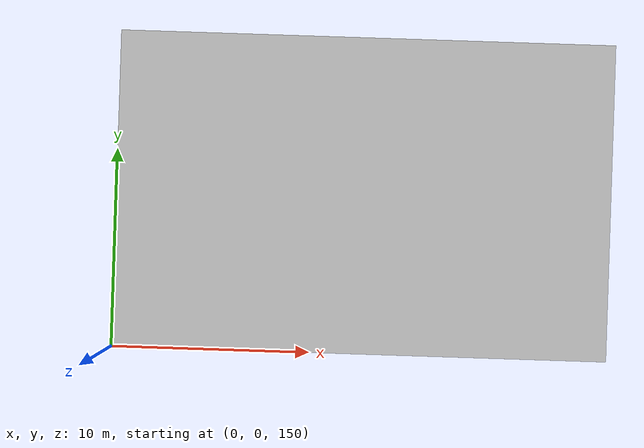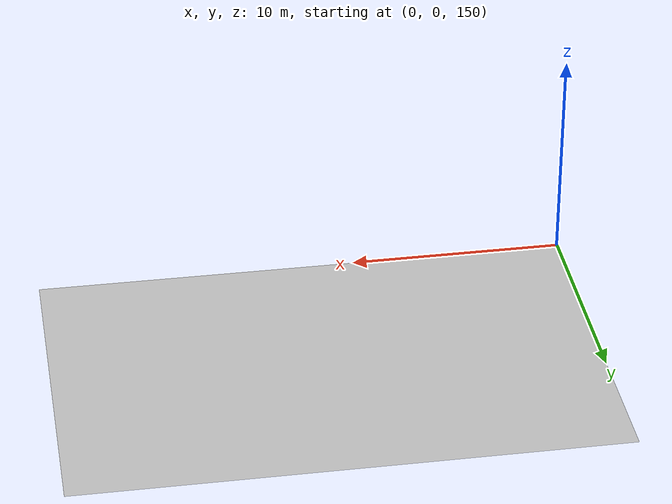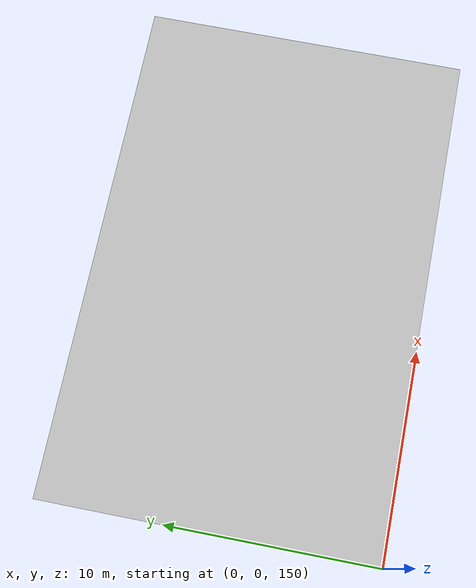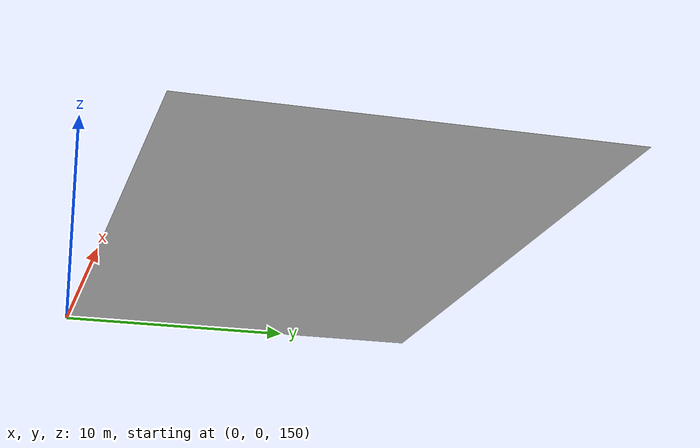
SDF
<?xml version="1.0" ?>
<sdf version="1.10">
    <model name="map2_150_125">
        <link name="map2_150_125_link">
            <visual name="map2_150_125_visual">
                <geometry>
                    <mesh>
                        <uri>meshes/visual/map2_150_125.obj</uri>
                    </mesh>
                </geometry>
            </visual>
            <collision name="map2_150_125_collision">
                <surface>
                    <friction>
                        <ode>
                            <mu>2.316343837943928</mu>
                            <mu2>2.316343837943928</mu2>
                        </ode>
                        <bullet>
                            <friction>2.316343837943928</friction>
                            <friction2>2.316343837943928</friction2>
                        </bullet>
                    </friction>
                </surface>
                <geometry>
                    <mesh>
                        <uri>meshes/visual/map2_150_125.obj</uri>
                    </mesh>
                </geometry>
            </collision>
        </link>
        <static>True</static>
    </model>
</sdf>
